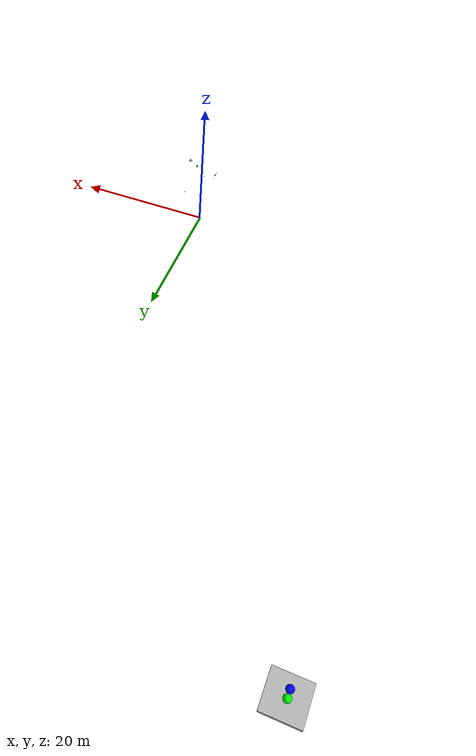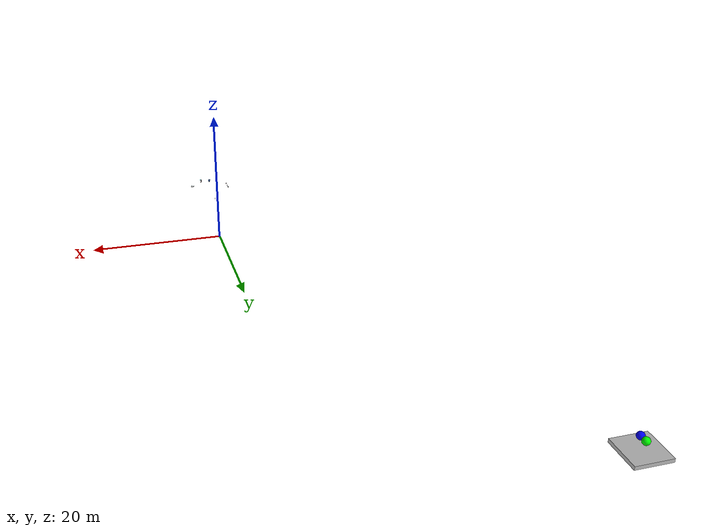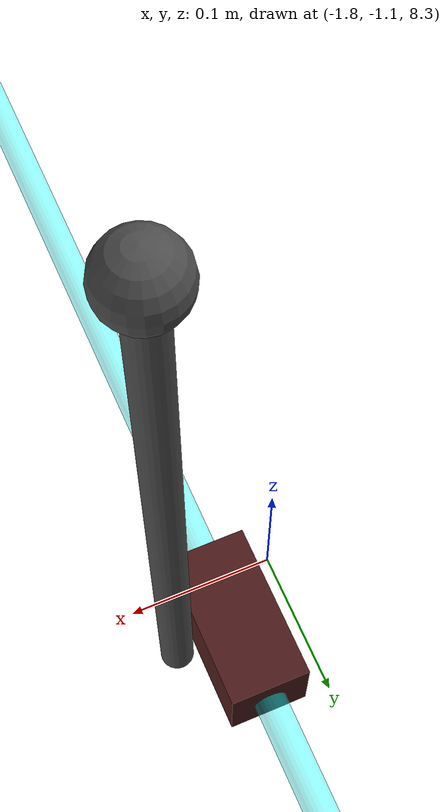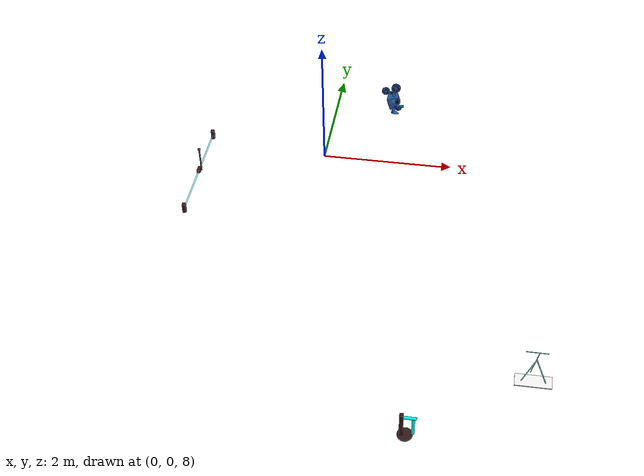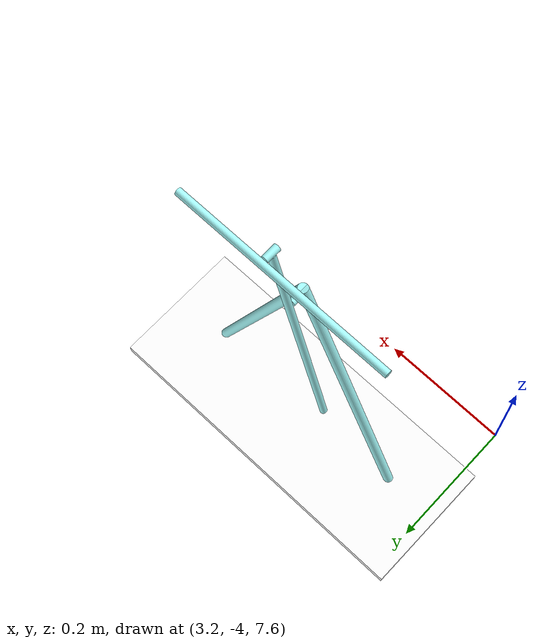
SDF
<sdf version="1.9">
 <world name="harmonic">
  <physics name="1ms" type="ignored">
   <dart><collision_detector>bullet</collision_detector></dart>
   <max_step_size>0.001</max_step_size>
   <real_time_factor>1.0</real_time_factor>
  </physics>
  <plugin filename="gz-sim-physics-system" name="gz::sim::systems::Physics"/>
  <plugin filename="gz-sim-sensors-system" name="gz::sim::systems::Sensors">
   <render_engine>ogre2</render_engine>
  </plugin>
  <plugin filename="gz-sim-user-commands-system" name="gz::sim::systems::UserCommands"/>
  <plugin filename="gz-sim-scene-broadcaster-system" name="gz::sim::systems::SceneBroadcaster"/>
  <plugin filename="gz-sim-buoyancy-system" name="gz::sim::systems::Buoyancy">
   <graded_buoyancy>
    <default_density>1000</default_density>
    <density_change><above_depth>0</above_depth><density>1</density></density_change>
   </graded_buoyancy>
   <enable>Tethys</enable>
  </plugin>
  <plugin filename="gz-sim-dvl-system" name="gz::sim::systems::DopplerVelocityLogSystem"/>
  <gravity>0 0 -9.8</gravity>
  <scene><ambient>1 1 1</ambient><grid>false</grid></scene>
  <light type="directional" name="sun">
   <pose>0 0 20 -1.3 0 0.5</pose>
   <diffuse>0.8 0.8 0.8 1</diffuse>
   <specular>0.01 0.01 0.01 1</specular>
   <intensity>2</intensity>
   <visualize>false</visualize>
  </light>
  <light type="point" name="point_light">
   <pose>0.73 0.09 8.77 0 0 0</pose>
   <diffuse>1 1 1 1</diffuse>
   <specular>.01 .01 .01 1</specular>
   <attenuation>
    <range>20</range>
    <linear>0.2</linear>
    <constant>0.8</constant>
    <quadratic>0.01</quadratic>
   </attenuation>
   <visualize>false</visualize>
  </light>
  <light type="point" name="point_light_01">
   <pose>3.482 -4.28 8.87 0 0 0</pose>
   <diffuse>1 1 1 1</diffuse>
   <specular>0.01 0.01 0.01 1</specular>
   <attenuation>
    <range>10</range>
    <linear>0.5</linear>
    <constant>0.8</constant>
    <quadratic>0.001</quadratic>
   </attenuation>
   <cast_shadows>false</cast_shadows>
   <visualize>false</visualize>
  </light>
  <light type="point" name="point_light_02">
   <pose>0.13 0.46 11.60 0 0 0</pose>
   <diffuse>1 1 1 1</diffuse>
   <specular>0.01 0.01 0.01 1</specular>
   <attenuation>
    <range>10</range>
    <linear>0.2</linear>
    <constant>0.5</constant>
    <quadratic>0.001</quadratic>
   </attenuation>
   <cast_shadows>false</cast_shadows>
   <visualize>false</visualize>
  </light>
  <light type="point" name="point_light_03">
   <pose>4.27 -1.27 11.21 0 0 0</pose>
   <diffuse>1 1 1 1</diffuse>
   <specular>0.01 0.01 0.01 1</specular>
   <attenuation>
    <range>10</range>
    <linear>0.5</linear>
    <constant>0.8</constant>
    <quadratic>0.001</quadratic>
   </attenuation>
   <cast_shadows>false</cast_shadows>
   <visualize>false</visualize>
  </light>
  <light type="point" name="point_light_04">
   <pose>-0.31 -3.78 8.61 0 0 0</pose>
   <diffuse>1 1 1 1</diffuse>
   <specular>.01 .01 .01 1</specular>
   <attenuation>
    <range>10</range>
    <linear>0.5</linear>
    <constant>0.8</constant>
    <quadratic>0.001</quadratic>
   </attenuation>
   <cast_shadows>false</cast_shadows>
   <visualize>false</visualize>
  </light>
  <include><name>Spheres</name><pose>-35 65 0 0 0 0</pose><uri>Spheres</uri></include>
  <model name="spheres_platform">
   <static>true</static>
   <pose>-35 64.5 -1.6 0 0 0</pose>
   <link name="link">
    <visual name="visual"><geometry><box><size>5 5 0.5</size></box></geometry></visual>
    <collision name="collision"><geometry><box><size>5 5 0.5</size></box></geometry></collision>
   </link>
  </model>
  <include><pose>-0.90 2.04 10.26 0 0 0</pose><name>fidget_spinner</name><uri>fidget_spinner</uri></include>
  <include><pose>1.85 -5.05 7.82 0 0 0</pose><name>Pendulum</name><uri>Pendulum</uri></include>
  <include>
   <name>Pendulum_sculpture</name>
   <pose>3.43 -3.82 7.64 0 0 1.57</pose>
   <uri>pendulum_sculpture</uri>
  </include>
  <include><pose>1.1 -0.6 9.46 0 0 0.0</pose><name>Harmonic Mascot</name><uri>Harmonic Mascot</uri></include>
  <include><pose degrees="true">-1.75 -1.04 8.37   0 0 -90</pose><uri>CartPole</uri></include>
  <model name="boundary">
   <static>true</static>
   <link name="link">
    <collision name="x">
     <pose>3000 0 0 0 0 0</pose>
     <geometry><box><size>1 6000 6000</size></box></geometry>
    </collision>
    <collision name="y">
     <pose>0 3000 0 0 0 0</pose>
     <geometry><box><size>6000 1 6000</size></box></geometry>
    </collision>
    <collision name="x_neg">
     <pose>-3000 0 0 0 0 0</pose>
     <geometry><box><size>1 6000 6000</size></box></geometry>
    </collision>
    <collision name="y_neg">
     <pose>0 -3000 0 0 0 0</pose>
     <geometry><box><size>6000 1 6000</size></box></geometry>
    </collision>
    <collision name="bottom">
     <pose>0 0 -3000 0 0 0</pose>
     <geometry><box><size>6000 6000 1</size></box></geometry>
    </collision>
   </link>
  </model>
  <model name="wide_angle_camera_lensflare">
   <static>true</static>
   <pose>1.08 4.54 8.56 0.0 0.0 1.57</pose>
   <link name="link">
    <visual name="visual"><geometry><box><size>0.1 0.1 0.1</size></box></geometry></visual>
    <visual name="center">
     <pose>0.02 0 0 0.0 1.57 0</pose>
     <geometry><sphere><radius>0.04</radius></sphere></geometry>
     <material><diffuse>0.2 0.2 0.2</diffuse></material>
    </visual>
    <sensor name="wide_angle_camera" type="wideanglecamera">
     <camera>
      <horizontal_fov>3.14159</horizontal_fov>
      <image><width>640</width><height>480</height></image>
      <clip><near>0.1</near><far>100</far></clip>
      <lens>
       <type>equidistant</type>
       <scale_to_hfov>true</scale_to_hfov>
       <cutoff_angle>1.5707</cutoff_angle>
       <env_texture_size>512</env_texture_size>
      </lens>
     </camera>
     <always_on>1</always_on>
     <update_rate>30</update_rate>
     <visualize>true</visualize>
     <topic>wide_angle_camera</topic>
     <plugin filename="gz-sim-lens-flare-system" name="gz::sim::systems::LensFlare">
      <light_name>sun</light_name>
     </plugin>
    </sensor>
   </link>
  </model>
 </world>
</sdf>

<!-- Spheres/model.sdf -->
<sdf version="1.6">
  <model name="spheres">
       <link name="sphere_no_added_mass">
        <inertial>
          <inertia>
            <ixx>0.1</ixx>
            <ixy>0</ixy>
            <ixz>0</ixz>
            <iyy>0.1</iyy>
            <iyz>0</iyz>
            <izz>0.1</izz>
          </inertia>
          <mass>1.0</mass>
        </inertial>
        <collision name="sphere_no_added_mass_collision">
          <geometry>
            <sphere>
              <radius>0.5</radius>
            </sphere>
          </geometry>
        </collision>

        <visual name="sphere_no_added_mass_visual">
          <geometry>
            <sphere>
              <radius>0.5</radius>
            </sphere>
          </geometry>
          <material>
            <ambient>0 1 0 1</ambient>
            <diffuse>0 1 0 1</diffuse>
            <specular>0 1 0 1</specular>
          </material>
        </visual>
      </link>

      <link name="sphere_with_added_mass">
      <pose relative_to="sphere_no_added_mass">0 -1 0 0 0 0</pose>
        <inertial>
          <inertia>
            <ixx>0.1</ixx>
            <ixy>0</ixy>
            <ixz>0</ixz>
            <iyy>0.1</iyy>
            <iyz>0</iyz>
            <izz>0.1</izz>
          </inertia>
          <mass>1.0</mass>
          <fluid_added_mass>
            <xx>261.666</xx>
            <yy>261.666</yy>
            <zz>261.666</zz>
          </fluid_added_mass>
        </inertial>
        <collision name="sphere_with_added_mass_collision">
          <geometry>
            <sphere>
              <radius>0.5</radius>
            </sphere>
          </geometry>
        </collision>

        <visual name="sphere_with_added_mass_visual">
          <geometry>
            <sphere>
              <radius>0.5</radius>
            </sphere>
          </geometry>
          <material>
            <ambient>0 0 1 1</ambient>
            <diffuse>0 0 1 1</diffuse>
            <specular>0 0 1 1</specular>
          </material>
        </visual>
      </link>

  </model>
</sdf>

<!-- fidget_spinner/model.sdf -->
<sdf version="1.11">
  <model name="fidget_spinner">
    <link name="fidget_spinner">
      <pose>0 0 0 0 0 0</pose>
      <inertial auto="true" />
      <collision name="fidget_spinner_col">
        <pose>0 0 0 1.57 0 0</pose>
        <density>1000.0</density>
        <geometry>
          <mesh>
            <uri>meshes/Spinner_scaled.stl</uri>
          </mesh>
        </geometry>
      </collision>
      <visual name="fidget_spinner_vis">
        <pose>0 0 0 1.57 0 0</pose>
        <geometry>
          <mesh>
            <uri>meshes/Spinner_scaled.stl</uri>
          </mesh>
        </geometry>
        <material>
          <diffuse>0.8627 0.078 0.235 1.0</diffuse>
          <ambient>0.8627 0.078 0.235 1.0</ambient>
          <specular>0.8627 0.078 0.235 1.0</specular>
        </material>
      </visual>
      <collision name="cylinder_weight_col">
        <density>2710.0</density>
        <pose>0 0.05 0 0 0 0</pose>
        <geometry>
          <cylinder>
            <length>0.015</length>
            <radius>0.024</radius>
          </cylinder>
        </geometry>
      </collision>
      <visual name="cylinder_weight_col">
        <pose>0 0.05 0 0 0 0</pose>
        <geometry>
          <cylinder>
            <length>0.015</length>
            <radius>0.024</radius>
          </cylinder>
        </geometry>
        <material>
          <ambient>0.66 1 1 1</ambient>
          <diffuse>0.66 1 1 1</diffuse>
          <specular>0.66 1 1 1</specular>
          <pbr>
            <metal>
              <metalness>0.4</metalness>
            </metal>
          </pbr>
        </material>
      </visual>
      <collision name="cylinder_weight2_col">
        <density>2710.0</density>
        <pose>-0.0435 -0.025 0 0 0 0</pose>
        <geometry>
          <cylinder>
            <length>0.015</length>
            <radius>0.024</radius>
          </cylinder>
        </geometry>
      </collision>
      <visual name="cylinder_weight2">
        <pose>-0.0435 -0.025 0 0 0 0</pose>
        <geometry>
          <cylinder>
            <length>0.015</length>
            <radius>0.024</radius>
          </cylinder>
        </geometry>
        <material>
          <ambient>0.66 1 1 1</ambient>
          <diffuse>0.66 1 1 1</diffuse>
          <specular>0.66 1 1 1</specular>
          <pbr>
            <metal>
              <metalness>0.4</metalness>
            </metal>
          </pbr>
        </material>
      </visual>
      <collision name="cylinder_weight3_col">
        <density>2710.0</density>
        <pose>0.0435 -0.025 0 0 0 0</pose>
        <geometry>
          <cylinder>
            <length>0.015</length>
            <radius>0.024</radius>
          </cylinder>
        </geometry>
      </collision>
      <visual name="cylinder_weight3">
        <pose>0.0435 -0.025 0 0 0 0</pose>
        <geometry>
          <cylinder>
            <length>0.015</length>
            <radius>0.024</radius>
          </cylinder>
        </geometry>
        <material>
          <ambient>0.66 1 1 1</ambient>
          <diffuse>0.66 1 1 1</diffuse>
          <specular>0.66 1 1 1</specular>
          <pbr>
            <metal>
              <metalness>0.4</metalness>
            </metal>
          </pbr>
        </material>
      </visual>
    </link>
    <model name="central_cylinder_pivot">
      <static>true</static>
      <link name="cylinder_pivot">
        <collision name="cylinder_pivot_col">
          <geometry>
            <cylinder>
              <length>0.02</length>
              <radius>0.024</radius>
            </cylinder>
          </geometry>
        </collision>
        <visual name="cylinder_pivot_vis">
          <geometry>
            <cylinder>
              <length>0.02</length>
              <radius>0.024</radius>
            </cylinder>
          </geometry>
          <material>
            <ambient>0.66 1 1 1</ambient>
            <diffuse>0.66 1 1 1</diffuse>
            <specular>0.66 1 1 1</specular>
            <pbr>
              <metal>
                <metalness>0.4</metalness>
              </metal>
            </pbr>
          </material>
        </visual>
      </link>
    </model>

    <joint name="pivot" type="revolute">
      <pose>0 0 0 0 0 0</pose>
      <parent>fidget_spinner</parent>
      <child>central_cylinder_pivot::cylinder_pivot</child>
      <axis>
        <xyz>0 0 1.0</xyz>
      </axis>
    </joint>
  </model>
</sdf>

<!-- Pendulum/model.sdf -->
<sdf version="1.11">
  <model name="pendulum">
    <link name="base">
      <inertial auto="true"/>
      <visual name="vis_plate_on_ground">
        <pose>0 0 0.01 0 0 0</pose>
        <geometry>
          <cylinder>
            <radius>0.1</radius>
            <length>0.02</length>
          </cylinder>
        </geometry>
        <material>
          <diffuse>0.2 0.1 0.1</diffuse>
          <specular>0.2 0.2 0.2</specular>
        </material>
      </visual>
      <visual name="vis_pole">
        <pose>-0.05 0 0.2 0 0 0</pose>
        <geometry>
          <box>
            <size>0.05 0.05 0.4</size>
          </box>
        </geometry>
        <material>
          <diffuse>0.2 0.1 0.1</diffuse>
          <specular>0.2 0.2 0.2</specular>
        </material>
      </visual>
      <collision name="col_plate_on_ground">
        <density>1</density>
        <pose>0 0 0.01 0 0 0</pose>
        <geometry>
          <cylinder>
            <radius>0.1</radius>
            <length>0.02</length>
          </cylinder>
        </geometry>
      </collision>
      <collision name="col_pole">
        <density>1000</density>
        <pose>-0.05 0 0.2 0 0 0</pose>
        <geometry>
          <box>
            <size>0.05 0.05 0.4</size>
          </box>
        </geometry>
      </collision>
    </link>

    <!-- upper link, length 1, IC -90 degrees -->
    <link name="upper_link">
      <pose>0 0 0.35 3.1415 0 0</pose>
      <self_collide>0</self_collide>
      <inertial auto="true"/>
      <visual name="vis_upper_joint">
        <pose>0.04 0 0 0 1.5708 0</pose>
        <geometry>
          <cylinder>
            <radius>0.02</radius>
            <length>0.2</length>
          </cylinder>
        </geometry>
        <material>
          <diffuse>0.0 1.0 1.0</diffuse>
          <specular>1.0 1.0 1.0</specular>
        </material>
      </visual>
      <visual name="vis_cylinder">
        <pose>0.1 0 0.15 0 0 0</pose>
        <geometry>
          <cylinder>
            <radius>0.02</radius>
            <length>0.3</length>
          </cylinder>
        </geometry>
        <material>
          <diffuse>0.0 1.0 1.0</diffuse>
          <specular>1.0 1.0 1.0</specular>
        </material>
      </visual>
      <collision name="col_upper_joint">
        <density>1000</density>
        <pose>0.04 0 0 0 1.5708 0</pose>
        <geometry>
          <cylinder>
            <radius>0.02</radius>
            <length>0.2</length>
          </cylinder>
        </geometry>
      </collision>
      <collision name="col_cylinder">
        <density>1000</density>
        <pose>0.1 0 0.15 0 0 0</pose>
        <geometry>
          <cylinder>
            <radius>0.02</radius>
            <length>0.3</length>
          </cylinder>
        </geometry>
      </collision>
    </link>

    <!-- pin joint for upper link, at origin of upper link -->
    <joint name="upper_joint" type="revolute">
      <parent>base</parent>
      <child>upper_link</child>
      <axis>
        <xyz>1.0 0 0</xyz>
      </axis>
    </joint>

    <joint name="fix_to_world" type="fixed">
      <parent>world</parent>
      <child>base</child>
    </joint>
  </model>
</sdf>

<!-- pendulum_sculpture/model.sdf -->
<sdf version="1.11">
  <model name="pendulum">
    <link name="base">
      <inertial auto="true" />
      <visual name="vis_plate_on_ground">
        <pose>-0.0 0.001 0.0005 0 0 0</pose>
        <geometry>
          <box>
            <size>0.2 0.5 0.015</size>
          </box>
        </geometry>
        <material>
          <ambient>1 1 1 1</ambient>
          <diffuse>1 1 1 1</diffuse>
          <specular>1 1 1 1</specular>
          <pbr>
            <metal>
              <albedo_map>materials/Wood/Wood_COLOR.jpg</albedo_map>
              <normal_map>materials/Wood/Wood_NORM.jpg</normal_map>
              <roughness_map>materials/Wood/Wood_ROUGH.jpg</roughness_map>
            </metal>
          </pbr>
        </material>
      </visual>
      <visual name="vis_pole">
        <pose>-0.01375 0.0819 0.225 0.349 0 0</pose>
        <geometry>
          <cylinder>
            <length>0.4788</length>
            <radius>0.007</radius>
          </cylinder>
        </geometry>
        <material>
          <ambient>0.66 1 1 1</ambient>
          <diffuse>0.66 1 1 1</diffuse>
          <specular>0.66 1 1 1</specular>
          <pbr>
            <metal>
              <metalness>0.9</metalness>
            </metal>
          </pbr>
        </material>
      </visual>
      <visual name="vis_pole2">
        <pose>-0.01375 -0.0819 0.225 -0.349 0 0</pose>
        <geometry>
          <cylinder>
            <length>0.4788</length>
            <radius>0.007</radius>
          </cylinder>
        </geometry>
        <material>
          <ambient>0.66 1 1 1</ambient>
          <diffuse>0.66 1 1 1</diffuse>
          <specular>0.66 1 1 1</specular>
          <pbr>
            <metal>
              <metalness>0.9</metalness>
            </metal>
          </pbr>
        </material>
      </visual>
      <collision name="col_plate_on_ground">
        <density>2710.0</density>
        <pose>-0.0 0.001 0.0005 0 0 0</pose>
        <geometry>
          <box>
            <size>0.2 0.5 0.015</size>
          </box>
        </geometry>
      </collision>
      <collision name="col_pole">
        <density>2710</density>
        <pose>-0.01375 0.0819 0.225 0.349 0 0</pose>
        <geometry>
          <cylinder>
            <length>0.4788</length>
            <radius>0.007</radius>
          </cylinder>
        </geometry>
      </collision>
      <collision name="col_pole2">
        <density>2710</density>
        <pose>-0.01375 -0.0819 0.225 -0.349 0 0</pose>
        <geometry>
          <cylinder>
            <length>0.4788</length>
            <radius>0.007</radius>
          </cylinder>
        </geometry>
      </collision>
    </link>

    <!-- upper link, length 1, IC -90 degrees -->
    <link name="upper_link">
      <pose>0 0.017 0.355 0.2 0 0</pose>
      <self_collide>0</self_collide>
      <inertial auto="true" />
      <visual name="vis_upper_joint">
        <pose>-0.0025 0 0.0875 0 1.5708 0</pose>
        <geometry>
          <cylinder>
            <radius>0.005</radius>
            <length>0.015</length>
          </cylinder>
        </geometry>
        <material>
          <ambient>0.66 1 1 1</ambient>
          <diffuse>0.66 1 1 1</diffuse>
          <specular>0.66 1 1 1</specular>
          <pbr>
            <metal>
              <metalness>0.9</metalness>
            </metal>
          </pbr>
        </material>
      </visual>
      <visual name="vis_bob2">
        <pose>0.010 0 0.20 0 1.5708 0</pose>
        <geometry>
          <cylinder>
            <radius>0.005</radius>
            <length>0.02</length>
          </cylinder>
        </geometry>
        <material>
          <ambient>0.66 1 1 1</ambient>
          <diffuse>0.66 1 1 1</diffuse>
          <specular>0.66 1 1 1</specular>
          <pbr>
            <metal>
              <metalness>0.9</metalness>
            </metal>
          </pbr>
        </material>
      </visual>
      <visual name="vis_cylinder">
        <pose>0.01 0 0 0 0 0</pose>
        <geometry>
          <cylinder>
            <radius>0.005</radius>
            <length>0.395</length>
          </cylinder>
        </geometry>
        <material>
          <ambient>0.66 1 1 1</ambient>
          <diffuse>0.66 1 1 1</diffuse>
          <specular>0.66 1 1 1</specular>
          <pbr>
            <metal>
              <metalness>0.9</metalness>
            </metal>
          </pbr>
        </material>
      </visual>
      <collision name="col_upper_joint">
        <density>2710</density>
        <pose>-0.0025 0 0.0875 0 1.5708 0</pose>
        <geometry>
          <cylinder>
            <radius>0.01</radius>
            <length>0.015</length>
          </cylinder>
        </geometry>
      </collision>
      <collision name="col_bob2">
        <density>2710</density>
        <pose>0.010 0 0.207 0 1.5708 0</pose>
        <geometry>
          <cylinder>
            <radius>0.01</radius>
            <length>0.02</length>
          </cylinder>
        </geometry>
      </collision>
      <collision name="col_cylinder">
        <density>2710</density>
        <pose>0.01 0 0 0 0 0</pose>
        <geometry>
          <cylinder>
            <radius>0.005</radius>
            <length>0.395</length>
          </cylinder>
        </geometry>
      </collision>
    </link>

    <!-- lower link, length 1, IC ~-120 degrees more -->
    <link name="lower_link">
      <pose>0.025 -0.02 0.55 -1.57 0 0</pose>
      <self_collide>0</self_collide>
      <inertial auto="true" />
      <visual name="vis_cylinder">
        <pose>0 0 0.025 0 0 0</pose>
        <geometry>
          <cylinder>
            <radius>0.005</radius>
            <length>0.30</length>
          </cylinder>
        </geometry>
        <material>
          <ambient>0.66 1 1 1</ambient>
          <diffuse>0.66 1 1 1</diffuse>
          <specular>0.66 1 1 1</specular>
          <pbr>
            <metal>
              <metalness>0.9</metalness>
            </metal>
          </pbr>
        </material>
      </visual>
      <collision name="col_cylinder">
        <density>2710</density>
        <pose>0 0 0.025 0 0 0</pose>
        <geometry>
          <cylinder>
            <radius>0.005</radius>
            <length>0.30</length>
          </cylinder>
        </geometry>
      </collision>
    </link>

    <!-- pin joint for upper link, at origin of upper link -->
    <joint name="upper_joint" type="revolute">
      <pose>-0.0025 0 0.0875 0 0 0</pose>
      <parent>base</parent>
      <child>upper_link</child>
      <axis>
        <xyz>1.0 0 0</xyz>
      </axis>
    </joint>

    <!-- pin joint for lower link, at origin of child link -->
    <joint name="lower_joint" type="revolute">
      <pose relative_to="upper_link">0.010 0 0.20 0 0 0</pose>
      <parent>upper_link</parent>
      <child>lower_link</child>
      <axis>
        <xyz>1.0 0 0</xyz>
      </axis>
    </joint>
  </model>
</sdf>

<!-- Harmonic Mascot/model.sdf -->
<sdf version="1.9">
  <model name="harmonic_mascot">
    <static>true</static>
    <link name="base_link">
      <collision name="collision">
        <pose>0 0 0 0 0 1.57</pose>
        <geometry>
          <mesh>
            <uri>meshes/harmonic_mascot.dae</uri>
            <scale>0.2 0.2 0.2</scale>
          </mesh>
        </geometry>
      </collision>
      <visual name="visual">
        <pose>0 0 0 0 0 1.57</pose>
        <geometry>
          <mesh>
            <uri>meshes/harmonic_mascot.dae</uri>
            <scale>0.2 0.2 0.2</scale>
          </mesh>
        </geometry>
      </visual>
      <!-- uncomment to debug projector pose -->
      <projector name="projector">
        <pose>0.13 -0.09 0.25 0 -0.3 0</pose>
        <near_clip>1</near_clip>
        <far_clip>1.8</far_clip>
        <fov>0.4</fov>
        <texture>materials/textures/harmonic_logo.png</texture>
      </projector>
      <light name="projector_light" type="spot">
        <pose>0.13 -0.09 0.25 0 -0.3 0</pose>
        <diffuse>1 1 1 1</diffuse>
        <specular>0.5 0.5 0.5 1</specular>
        <attenuation>
          <range>5</range>
          <linear>0.5</linear>
          <constant>0.8</constant>
          <quadratic>0.01</quadratic>
        </attenuation>
        <direction>1 0 0</direction>
        <spot>
          <inner_angle>0.1</inner_angle>
          <outer_angle>0.6</outer_angle>
          <falloff>0.8</falloff>
        </spot>
        <cast_shadows>false</cast_shadows>
        <visualize>false</visualize>
      </light>
    </link>
  </model>
</sdf>

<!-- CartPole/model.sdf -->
<sdf version="1.11">
  <model name="CartPole">
    <joint name="fix_to_world" type="fixed">
      <parent>world</parent>
      <child>base</child>
    </joint>

    <link name="base">
      <visual name="shaft">
        <pose degrees="true">0 0 0   0 90 0</pose>
        <geometry>
          <cylinder>
            <length>1.70</length>
            <radius>0.01</radius>
          </cylinder>
        </geometry>
        <material>
          <diffuse>0.0 1.0 1.0 0.4</diffuse>
          <specular>1.0 1.0 1.0 0.4</specular>
        </material>
      </visual>
      <visual name="lower_limit">
        <pose>-0.870 0 0   0 0 0</pose>
        <geometry>
          <box>
            <size>0.05 0.05 0.15</size>
          </box>
        </geometry>
        <material>
          <diffuse>0.2 0.1 0.1</diffuse>
          <specular>0.2 0.2 0.2</specular>
        </material>
      </visual>
      <visual name="upper_limit">
        <pose>0.870 0 0   0 0 0</pose>
        <geometry>
          <box>
            <size>0.05 0.05 0.15</size>
          </box>
        </geometry>
        <material>
          <diffuse>0.2 0.1 0.1</diffuse>
          <specular>0.2 0.2 0.2</specular>
        </material>
      </visual>
    </link>
    <joint name="cart_joint" type="prismatic">
      <parent>base</parent>
      <child>cart</child>
      <axis>
        <xyz>1 0 0</xyz>
        <limit>
          <lower>-0.80</lower>
          <upper>0.80</upper>
          <effort>100</effort>
        </limit>
      </axis>
    </joint>

    <link name="cart">
      <inertial auto="true"/>
      <visual name="visual">
        <geometry>
          <box>
            <size>0.1 0.05 0.05</size>
          </box>
        </geometry>
        <material>
          <diffuse>0.3 0.1 0.1</diffuse>
          <specular>0.1 0.1 0.1</specular>
        </material>
      </visual>
      <collision name="collision">
        <density>1000</density>
        <geometry>
          <box>
            <size>0.1 0.05 0.05</size>
          </box>
        </geometry>
      </collision>
    </link>

    <joint name="pole_joint" type="revolute">
      <pose relative_to="cart"/>
      <parent>cart</parent>
      <child>pole</child>
      <axis>
        <xyz>0 1 0</xyz>
      </axis>
    </joint>

    <link name="pole">
      <pose>0 0.040 0.2   0 0 0</pose>
      <inertial auto="true"/>
      <visual name="visual">
        <geometry>
          <cylinder>
            <length>0.4</length>
            <radius>0.01</radius>
          </cylinder>
        </geometry>
        <material>
          <diffuse>0.3 0.3 0.3</diffuse>
        </material>
      </visual>
      <collision name="collision">
        <density>1</density>
        <geometry>
          <cylinder>
            <length>0.4</length>
            <radius>0.01</radius>
          </cylinder>
        </geometry>
      </collision>
    </link>

    <joint name="pole_point_mass_joint" type="fixed">
      <parent>pole</parent>
      <child>point_mass</child>
    </joint>

    <link name="point_mass">
      <pose relative_to="pole">0 0.0 0.2   0 0 0</pose>
      <inertial auto="true"/>
      <visual name="visual">
        <geometry>
          <sphere>
            <radius>0.02</radius>
          </sphere>
        </geometry>
        <material>
          <diffuse>0.3 0.3 0.3</diffuse>
        </material>
      </visual>
      <collision name="collision">
        <density>1000</density>
        <geometry>
          <sphere>
            <radius>0.02</radius>
          </sphere>
        </geometry>
      </collision>
    </link>

    <plugin filename="gz-sim-python-system-loader-system" name="gz::sim::systems::PythonSystemLoader">
      <module_name>cart_pole_controller</module_name>
      <initial_angle>0.2</initial_angle>
      <reset_angle_topic>cart_pole/reset_angle</reset_angle_topic>
      <reload_controller_topic>cart_pole/reload_controller</reload_controller_topic>
      <state_topic>cart_pole/state</state_topic>
    </plugin>
  </model>
</sdf>
